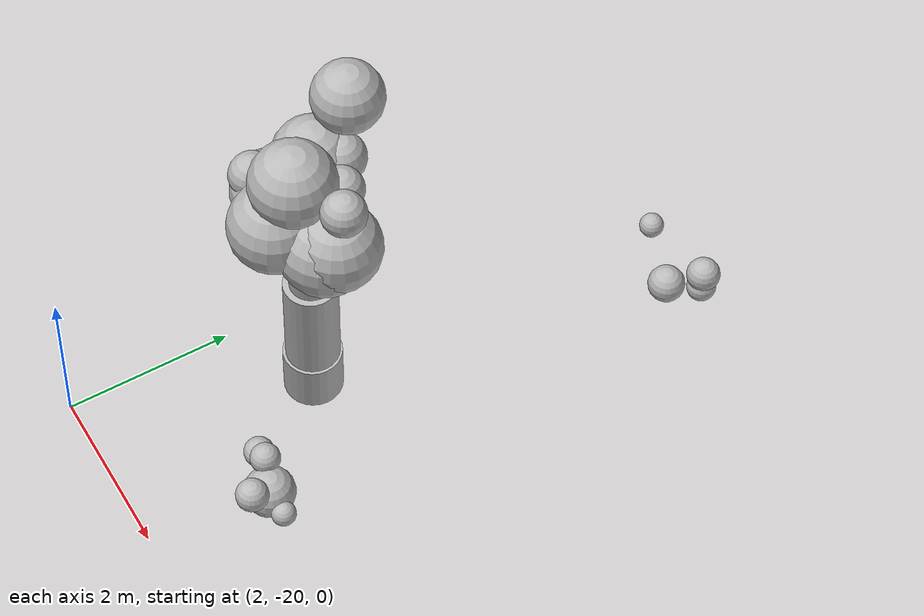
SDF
<sdf version="1.6">
 <world name="default">
  <model name="bush_20">
   <static>true</static>
   <pose>3.0247 -17.3867 0 0 0 0</pose>
   <link name="trunk">
    <pose>0 0 1.5000 0 0 0</pose>
    <collision name="trunk_c">
     <geometry><cylinder><radius>0.3500</radius><length>3.0000</length></cylinder></geometry>
    </collision>
   </link>
   <link name="trunk_v0">
    <pose>-0.0004 0.0011 0.3100 0 0 0</pose>
    <visual name="trunk_v0_v">
     <geometry><cylinder><radius>0.3448</radius><length>0.6448</length></cylinder></geometry>
     <material>
      <script>
       <uri>model://bushfire/materials/scripts</uri>
       <uri>model://bushfire/materials/textures</uri>
       <name>Bushfire/CharBark</name>
      </script>
     </material>
    </visual>
   </link>
   <link name="trunk_v1">
    <pose>-0.0026 0.0076 1.2700 0 0 0</pose>
    <visual name="trunk_v1_v">
     <geometry><cylinder><radius>0.3150</radius><length>1.3520</length></cylinder></geometry>
     <material>
      <script>
       <uri>model://bushfire/materials/scripts</uri>
       <uri>model://bushfire/materials/textures</uri>
       <name>Bushfire/BarkSmooth</name>
      </script>
     </material>
    </visual>
   </link>
   <link name="trunk_v2">
    <pose>-0.0065 0.0192 2.4600 0 0 0</pose>
    <visual name="trunk_v2_v">
     <geometry><cylinder><radius>0.2520</radius><length>1.1232</length></cylinder></geometry>
     <material>
      <script>
       <uri>model://bushfire/materials/scripts</uri>
       <uri>model://bushfire/materials/textures</uri>
       <name>Bushfire/BarkSmooth</name>
      </script>
     </material>
    </visual>
   </link>
   <link name="branch0">
    <pose>0.1471 0.0766 2.9823 0 0.5411 0.4800</pose>
    <visual name="branch0_v">
     <geometry><cylinder><radius>0.0372</radius><length>0.6439</length></cylinder></geometry>
     <material>
      <script>
       <uri>model://bushfire/materials/scripts</uri>
       <uri>model://bushfire/materials/textures</uri>
       <name>Bushfire/BarkSmooth</name>
      </script>
     </material>
    </visual>
   </link>
   <link name="branch1">
    <pose>-0.1845 0.3322 2.8861 0 0.9439 2.0778</pose>
    <visual name="branch1_v">
     <geometry><cylinder><radius>0.0363</radius><length>0.9383</length></cylinder></geometry>
     <material>
      <script>
       <uri>model://bushfire/materials/scripts</uri>
       <uri>model://bushfire/materials/textures</uri>
       <name>Bushfire/BarkSmooth</name>
      </script>
     </material>
    </visual>
   </link>
   <link name="branch2">
    <pose>-0.2304 -0.1600 2.7615 0 0.9549 3.7486</pose>
    <visual name="branch2_v">
     <geometry><cylinder><radius>0.0529</radius><length>0.6873</length></cylinder></geometry>
     <material>
      <script>
       <uri>model://bushfire/materials/scripts</uri>
       <uri>model://bushfire/materials/textures</uri>
       <name>Bushfire/BarkSmooth</name>
      </script>
     </material>
    </visual>
   </link>
   <link name="branch3">
    <pose>0.0775 -0.1515 2.9361 0 0.5529 5.1850</pose>
    <visual name="branch3_v">
     <geometry><cylinder><radius>0.0326</radius><length>0.6481</length></cylinder></geometry>
     <material>
      <script>
       <uri>model://bushfire/materials/scripts</uri>
       <uri>model://bushfire/materials/textures</uri>
       <name>Bushfire/BarkSmooth</name>
      </script>
     </material>
    </visual>
   </link>
   <link name="foliage0">
    <pose>-0.0611 -0.1246 3.7921 0 0 0</pose>
    <visual name="foliage0_v">
     <geometry><sphere><radius>0.4970</radius></sphere></geometry>
     <material>
      <script>
       <uri>model://bushfire/materials/scripts</uri>
       <uri>model://bushfire/materials/textures</uri>
       <name>Bushfire/Foliage0</name>
      </script>
     </material>
    </visual>
   </link>
   <link name="foliage1">
    <pose>-0.3974 0.6251 3.3957 0 0 0</pose>
    <visual name="foliage1_v">
     <geometry><sphere><radius>0.2965</radius></sphere></geometry>
     <material>
      <script>
       <uri>model://bushfire/materials/scripts</uri>
       <uri>model://bushfire/materials/textures</uri>
       <name>Bushfire/Foliage0</name>
      </script>
     </material>
    </visual>
   </link>
   <link name="foliage2">
    <pose>-0.2775 -0.2861 3.3229 0 0 0</pose>
    <visual name="foliage2_v">
     <geometry><sphere><radius>0.3243</radius></sphere></geometry>
     <material>
      <script>
       <uri>model://bushfire/materials/scripts</uri>
       <uri>model://bushfire/materials/textures</uri>
       <name>Bushfire/Foliage1</name>
      </script>
     </material>
    </visual>
   </link>
   <link name="foliage3">
    <pose>-0.0439 -0.3730 3.2246 0 0 0</pose>
    <visual name="foliage3_v">
     <geometry><sphere><radius>0.5264</radius></sphere></geometry>
     <material>
      <script>
       <uri>model://bushfire/materials/scripts</uri>
       <uri>model://bushfire/materials/textures</uri>
       <name>Bushfire/Foliage0</name>
      </script>
     </material>
    </visual>
   </link>
   <link name="foliage4">
    <pose>0.0166 0.4115 3.4402 0 0 0</pose>
    <visual name="foliage4_v">
     <geometry><sphere><radius>0.2632</radius></sphere></geometry>
     <material>
      <script>
       <uri>model://bushfire/materials/scripts</uri>
       <uri>model://bushfire/materials/textures</uri>
       <name>Bushfire/Foliage1</name>
      </script>
     </material>
    </visual>
   </link>
   <link name="foliage5">
    <pose>-0.6319 0.8481 4.0503 0 0 0</pose>
    <visual name="foliage5_v">
     <geometry><sphere><radius>0.4160</radius></sphere></geometry>
     <material>
      <script>
       <uri>model://bushfire/materials/scripts</uri>
       <uri>model://bushfire/materials/textures</uri>
       <name>Bushfire/Foliage0</name>
      </script>
     </material>
    </visual>
   </link>
   <link name="foliage6">
    <pose>-0.6445 -0.3199 3.3949 0 0 0</pose>
    <visual name="foliage6_v">
     <geometry><sphere><radius>0.2681</radius></sphere></geometry>
     <material>
      <script>
       <uri>model://bushfire/materials/scripts</uri>
       <uri>model://bushfire/materials/textures</uri>
       <name>Bushfire/Foliage2</name>
      </script>
     </material>
    </visual>
   </link>
   <link name="foliage7">
    <pose>0.4046 -0.0012 3.1026 0 0 0</pose>
    <visual name="foliage7_v">
     <geometry><sphere><radius>0.5325</radius></sphere></geometry>
     <material>
      <script>
       <uri>model://bushfire/materials/scripts</uri>
       <uri>model://bushfire/materials/textures</uri>
       <name>Bushfire/Foliage1</name>
      </script>
     </material>
    </visual>
   </link>
   <link name="foliage8">
    <pose>0.4940 0.0961 3.1895 0 0 0</pose>
    <visual name="foliage8_v">
     <geometry><sphere><radius>0.5088</radius></sphere></geometry>
     <material>
      <script>
       <uri>model://bushfire/materials/scripts</uri>
       <uri>model://bushfire/materials/textures</uri>
       <name>Bushfire/Foliage1</name>
      </script>
     </material>
    </visual>
   </link>
   <link name="foliage9">
    <pose>-0.5989 0.3924 3.3144 0 0 0</pose>
    <visual name="foliage9_v">
     <geometry><sphere><radius>0.4745</radius></sphere></geometry>
     <material>
      <script>
       <uri>model://bushfire/materials/scripts</uri>
       <uri>model://bushfire/materials/textures</uri>
       <name>Bushfire/Foliage0</name>
      </script>
     </material>
    </visual>
   </link>
   <link name="foliage10">
    <pose>-0.1742 -0.2084 3.7735 0 0 0</pose>
    <visual name="foliage10_v">
     <geometry><sphere><radius>0.2615</radius></sphere></geometry>
     <material>
      <script>
       <uri>model://bushfire/materials/scripts</uri>
       <uri>model://bushfire/materials/textures</uri>
       <name>Bushfire/Foliage0</name>
      </script>
     </material>
    </visual>
   </link>
   <link name="foliage11">
    <pose>-0.0104 -0.1436 3.6017 0 0 0</pose>
    <visual name="foliage11_v">
     <geometry><sphere><radius>0.2373</radius></sphere></geometry>
     <material>
      <script>
       <uri>model://bushfire/materials/scripts</uri>
       <uri>model://bushfire/materials/textures</uri>
       <name>Bushfire/Foliage1</name>
      </script>
     </material>
    </visual>
   </link>
   <link name="foliage12">
    <pose>0.6193 0.1231 3.9099 0 0 0</pose>
    <visual name="foliage12_v">
     <geometry><sphere><radius>0.2581</radius></sphere></geometry>
     <material>
      <script>
       <uri>model://bushfire/materials/scripts</uri>
       <uri>model://bushfire/materials/textures</uri>
       <name>Bushfire/Foliage0</name>
      </script>
     </material>
    </visual>
   </link>
   <link name="foliage13">
    <pose>-0.4813 0.3894 3.3674 0 0 0</pose>
    <visual name="foliage13_v">
     <geometry><sphere><radius>0.3024</radius></sphere></geometry>
     <material>
      <script>
       <uri>model://bushfire/materials/scripts</uri>
       <uri>model://bushfire/materials/textures</uri>
       <name>Bushfire/Foliage1</name>
      </script>
     </material>
    </visual>
   </link>
   <link name="foliage14">
    <pose>-0.5181 -0.1567 3.1628 0 0 0</pose>
    <visual name="foliage14_v">
     <geometry><sphere><radius>0.4686</radius></sphere></geometry>
     <material>
      <script>
       <uri>model://bushfire/materials/scripts</uri>
       <uri>model://bushfire/materials/textures</uri>
       <name>Bushfire/Foliage1</name>
      </script>
     </material>
    </visual>
   </link>
   <link name="foliage15">
    <pose>-0.2151 -0.1433 3.7015 0 0 0</pose>
    <visual name="foliage15_v">
     <geometry><sphere><radius>0.2370</radius></sphere></geometry>
     <material>
      <script>
       <uri>model://bushfire/materials/scripts</uri>
       <uri>model://bushfire/materials/textures</uri>
       <name>Bushfire/Foliage2</name>
      </script>
     </material>
    </visual>
   </link>
  </model>
  <model name="scrub">
   <static>true</static>
   <link name="scrub38_0">
    <pose>4.0671 -18.5374 0.6639 0 0 0</pose>
    <visual name="scrub38_0_v">
     <geometry><sphere><radius>0.1759</radius></sphere></geometry>
     <material>
      <script>
       <uri>model://bushfire/materials/scripts</uri>
       <uri>model://bushfire/materials/textures</uri>
       <name>Bushfire/Foliage2</name>
      </script>
     </material>
    </visual>
   </link>
   <link name="scrub38_1">
    <pose>4.3254 -18.6258 0.3956 0 0 0</pose>
    <visual name="scrub38_1_v">
     <geometry><sphere><radius>0.2979</radius></sphere></geometry>
     <material>
      <script>
       <uri>model://bushfire/materials/scripts</uri>
       <uri>model://bushfire/materials/textures</uri>
       <name>Bushfire/Foliage1</name>
      </script>
     </material>
    </visual>
   </link>
   <link name="scrub38_2">
    <pose>4.6498 -18.6211 0.3859 0 0 0</pose>
    <visual name="scrub38_2_v">
     <geometry><sphere><radius>0.1443</radius></sphere></geometry>
     <material>
      <script>
       <uri>model://bushfire/materials/scripts</uri>
       <uri>model://bushfire/materials/textures</uri>
       <name>Bushfire/Foliage0</name>
      </script>
     </material>
    </visual>
   </link>
   <link name="scrub38_3">
    <pose>3.8437 -18.5072 0.4580 0 0 0</pose>
    <visual name="scrub38_3_v">
     <geometry><sphere><radius>0.1757</radius></sphere></geometry>
     <material>
      <script>
       <uri>model://bushfire/materials/scripts</uri>
       <uri>model://bushfire/materials/textures</uri>
       <name>Bushfire/Foliage0</name>
      </script>
     </material>
    </visual>
   </link>
   <link name="scrub38_4">
    <pose>4.4012 -18.8760 0.6267 0 0 0</pose>
    <visual name="scrub38_4_v">
     <geometry><sphere><radius>0.1915</radius></sphere></geometry>
     <material>
      <script>
       <uri>model://bushfire/materials/scripts</uri>
       <uri>model://bushfire/materials/textures</uri>
       <name>Bushfire/Foliage0</name>
      </script>
     </material>
    </visual>
   </link>
   <link name="scrub78_1">
    <pose>4.3607 -12.9984 0.7533 0 0 0</pose>
    <visual name="scrub78_1_v">
     <geometry><sphere><radius>0.1981</radius></sphere></geometry>
     <material>
      <script>
       <uri>model://bushfire/materials/scripts</uri>
       <uri>model://bushfire/materials/textures</uri>
       <name>Bushfire/Foliage0</name>
      </script>
     </material>
    </visual>
   </link>
   <link name="scrub78_2">
    <pose>3.4564 -13.1387 0.7176 0 0 0</pose>
    <visual name="scrub78_2_v">
     <geometry><sphere><radius>0.1436</radius></sphere></geometry>
     <material>
      <script>
       <uri>model://bushfire/materials/scripts</uri>
       <uri>model://bushfire/materials/textures</uri>
       <name>Bushfire/Foliage2</name>
      </script>
     </material>
    </visual>
   </link>
   <link name="scrub78_4">
    <pose>4.3937 -13.0315 0.5745 0 0 0</pose>
    <visual name="scrub78_4_v">
     <geometry><sphere><radius>0.1730</radius></sphere></geometry>
     <material>
      <script>
       <uri>model://bushfire/materials/scripts</uri>
       <uri>model://bushfire/materials/textures</uri>
       <name>Bushfire/Foliage0</name>
      </script>
     </material>
    </visual>
   </link>
   <link name="scrub78_5">
    <pose>4.2250 -13.4093 0.6836 0 0 0</pose>
    <visual name="scrub78_5_v">
     <geometry><sphere><radius>0.2172</radius></sphere></geometry>
     <material>
      <script>
       <uri>model://bushfire/materials/scripts</uri>
       <uri>model://bushfire/materials/textures</uri>
       <name>Bushfire/Foliage2</name>
      </script>
     </material>
    </visual>
   </link>
  </model>
 </world>
</sdf>
